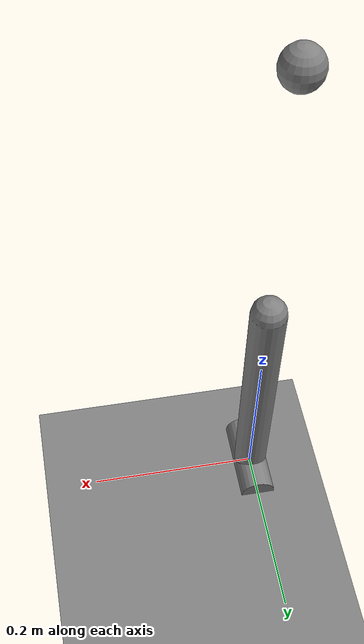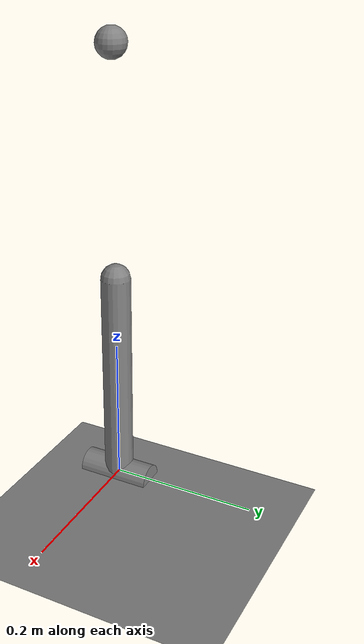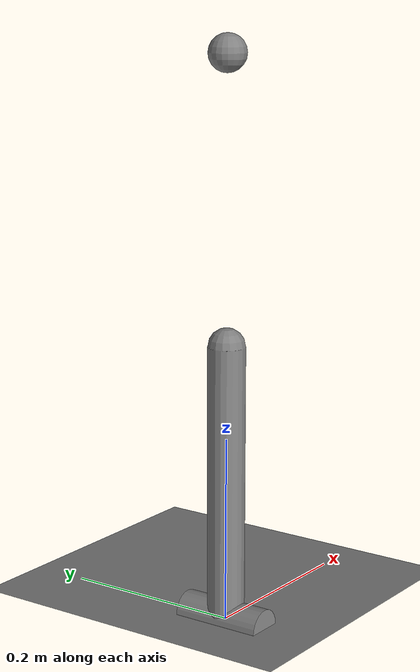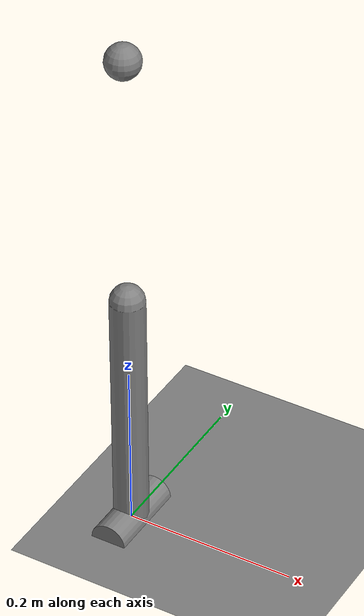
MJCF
<mujoco model="pendulum">
    <compiler angle="radian" inertiafromgeom="true"/>

    <option timestep="0.02">
        <flag contact="disable"/>
    </option>

    <default>
        <joint damping="0.05"/>
    </default>

    <worldbody>
        <light name="light" pos="0 0 2"/>
        <geom name="floor" size="2 2 .2" type="plane"/>
        <camera name="fixed" pos="0 -1.5 2" xyaxes='1 0 0 0 1 1'/>
        <camera name="lookat" mode="targetbodycom" target="pole" pos="0 -2 1"/>
        <body name="pole" pos="0 0 0">
            <joint name="hinge" type="hinge" axis="0 1 0" damping="0.1"/>
            <geom name="base" type="cylinder" quat="1 1 0 0" size="0.021 0.05" mass="0"/>
            <geom name="pole" type="capsule" pos="0 0 0.15" quat="1 0 0 0" size="0.02 0.15" mass="1"/>
            <site name="end_effector" type="sphere" size="0.02" pos="0 0 0.6"/>
        </body>
    </worldbody>

    <actuator>
        <motor name="torque" joint="hinge" gear="1" ctrlrange="-1 1" ctrllimited="true"/>
    </actuator>

</mujoco>
